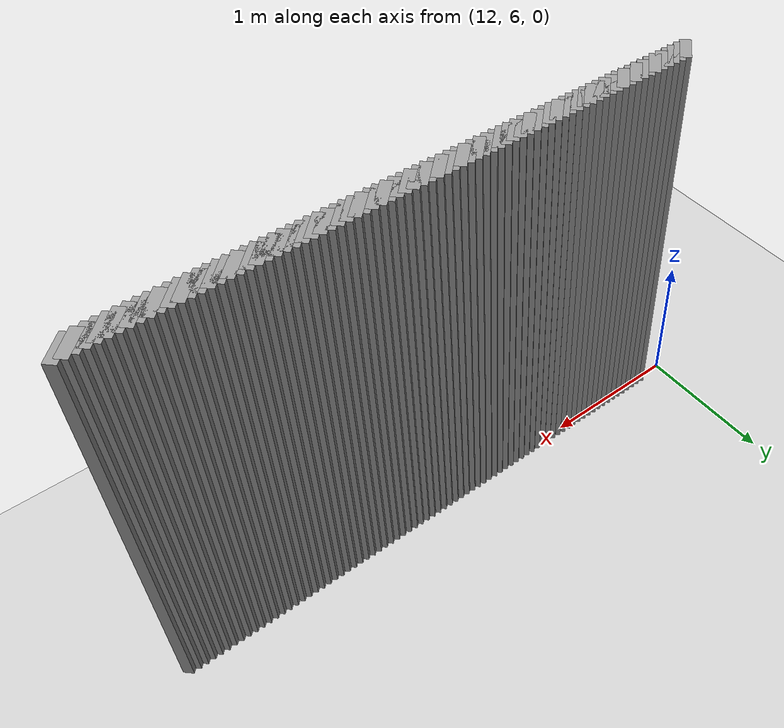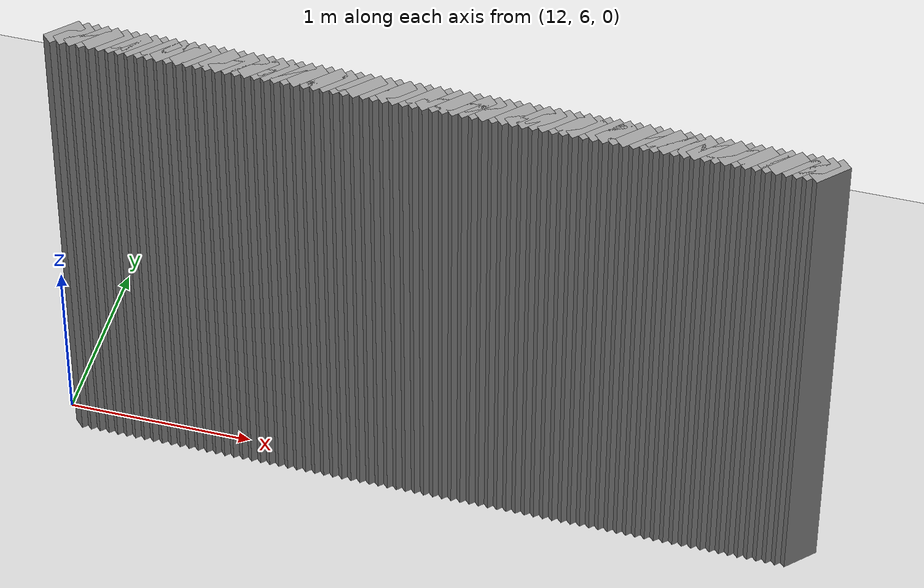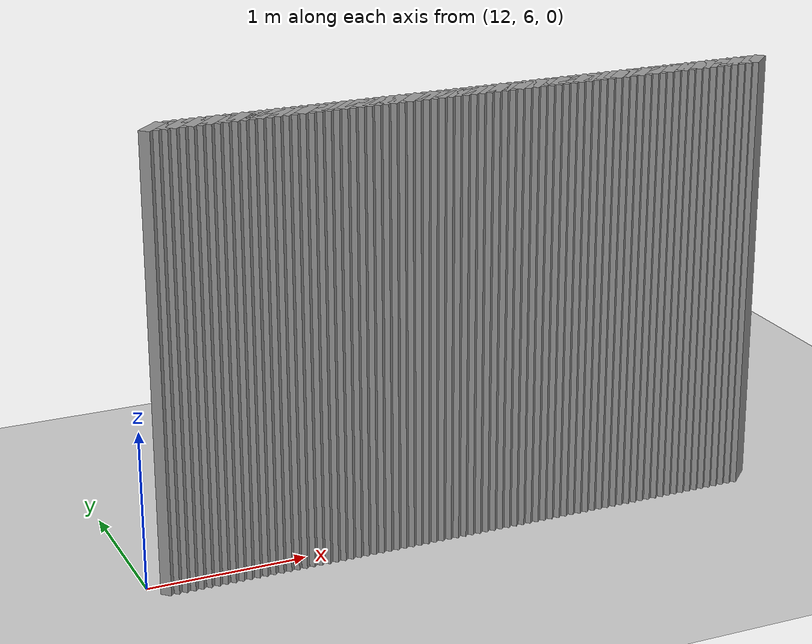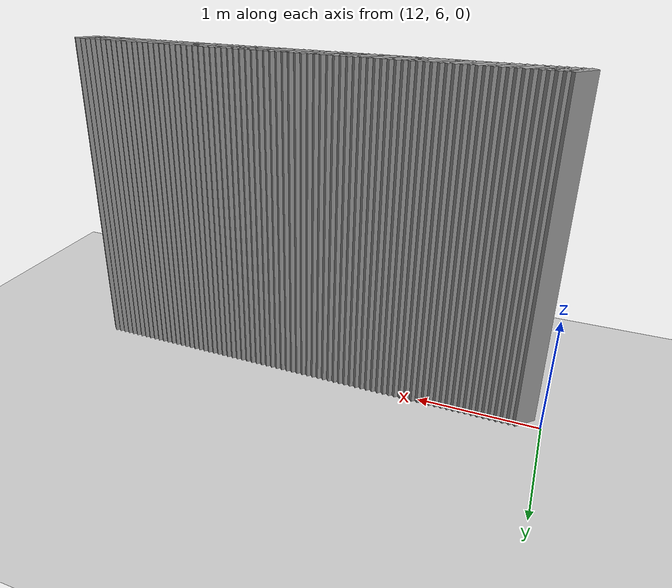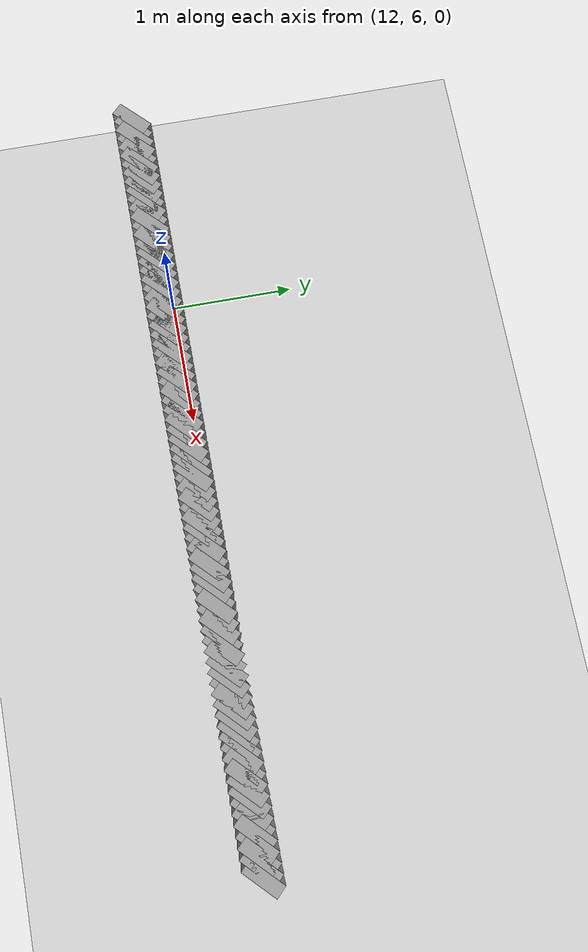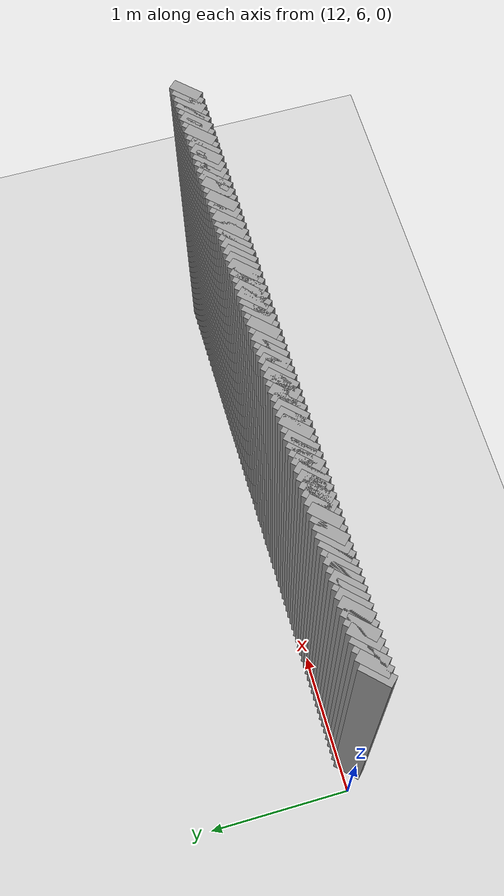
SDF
<sdf version="1.5">
 <world name="default">
  <include><uri>model://ground_plane</uri></include>
  <include><uri>model://sun</uri></include>
  <model name="grey_wall_4570">
   <static>1</static>
   <link name="link">
    <pose>12.15 5.95  1.4 0 0 -0.785398163397</pose>
    <collision name="collision"><geometry><box><size>0.0707106781187 .2  2.8</size></box></geometry></collision>
    <visual name="visual">
     <cast_shadows>0</cast_shadows>
     <geometry><box><size>0.0707106781187 .2  2.8</size></box></geometry>
     <material>
      <script>
       <uri>model://grey_wall/materials/scripts</uri>
       <uri>model://grey_wall/materials/textures</uri>
       <name>vrc/grey_wall</name>
      </script>
     </material>
    </visual>
   </link>
  </model>
  <model name="grey_wall_4571">
   <static>1</static>
   <link name="link">
    <pose>12.2 5.95  1.4 0 0 -0.785398163397</pose>
    <collision name="collision"><geometry><box><size>0.0707106781187 .2  2.8</size></box></geometry></collision>
    <visual name="visual">
     <cast_shadows>0</cast_shadows>
     <geometry><box><size>0.0707106781187 .2  2.8</size></box></geometry>
     <material>
      <script>
       <uri>model://grey_wall/materials/scripts</uri>
       <uri>model://grey_wall/materials/textures</uri>
       <name>vrc/grey_wall</name>
      </script>
     </material>
    </visual>
   </link>
  </model>
  <model name="grey_wall_4572">
   <static>1</static>
   <link name="link">
    <pose>12.25 5.95  1.4 0 0 -0.785398163397</pose>
    <collision name="collision"><geometry><box><size>0.0707106781187 .2  2.8</size></box></geometry></collision>
    <visual name="visual">
     <cast_shadows>0</cast_shadows>
     <geometry><box><size>0.0707106781187 .2  2.8</size></box></geometry>
     <material>
      <script>
       <uri>model://grey_wall/materials/scripts</uri>
       <uri>model://grey_wall/materials/textures</uri>
       <name>vrc/grey_wall</name>
      </script>
     </material>
    </visual>
   </link>
  </model>
  <model name="grey_wall_4573">
   <static>1</static>
   <link name="link">
    <pose>12.3 5.95  1.4 0 0 -0.785398163397</pose>
    <collision name="collision"><geometry><box><size>0.0707106781187 .2  2.8</size></box></geometry></collision>
    <visual name="visual">
     <cast_shadows>0</cast_shadows>
     <geometry><box><size>0.0707106781187 .2  2.8</size></box></geometry>
     <material>
      <script>
       <uri>model://grey_wall/materials/scripts</uri>
       <uri>model://grey_wall/materials/textures</uri>
       <name>vrc/grey_wall</name>
      </script>
     </material>
    </visual>
   </link>
  </model>
  <model name="grey_wall_4574">
   <static>1</static>
   <link name="link">
    <pose>12.35 5.95  1.4 0 0 -0.785398163397</pose>
    <collision name="collision"><geometry><box><size>0.0707106781187 .2  2.8</size></box></geometry></collision>
    <visual name="visual">
     <cast_shadows>0</cast_shadows>
     <geometry><box><size>0.0707106781187 .2  2.8</size></box></geometry>
     <material>
      <script>
       <uri>model://grey_wall/materials/scripts</uri>
       <uri>model://grey_wall/materials/textures</uri>
       <name>vrc/grey_wall</name>
      </script>
     </material>
    </visual>
   </link>
  </model>
  <model name="grey_wall_4575">
   <static>1</static>
   <link name="link">
    <pose>12.4 5.95  1.4 0 0 -0.785398163397</pose>
    <collision name="collision"><geometry><box><size>0.0707106781187 .2  2.8</size></box></geometry></collision>
    <visual name="visual">
     <cast_shadows>0</cast_shadows>
     <geometry><box><size>0.0707106781187 .2  2.8</size></box></geometry>
     <material>
      <script>
       <uri>model://grey_wall/materials/scripts</uri>
       <uri>model://grey_wall/materials/textures</uri>
       <name>vrc/grey_wall</name>
      </script>
     </material>
    </visual>
   </link>
  </model>
  <model name="grey_wall_4576">
   <static>1</static>
   <link name="link">
    <pose>12.45 5.95  1.4 0 0 -0.785398163397</pose>
    <collision name="collision"><geometry><box><size>0.0707106781187 .2  2.8</size></box></geometry></collision>
    <visual name="visual">
     <cast_shadows>0</cast_shadows>
     <geometry><box><size>0.0707106781187 .2  2.8</size></box></geometry>
     <material>
      <script>
       <uri>model://grey_wall/materials/scripts</uri>
       <uri>model://grey_wall/materials/textures</uri>
       <name>vrc/grey_wall</name>
      </script>
     </material>
    </visual>
   </link>
  </model>
  <model name="grey_wall_4577">
   <static>1</static>
   <link name="link">
    <pose>12.5 5.95  1.4 0 0 -0.785398163397</pose>
    <collision name="collision"><geometry><box><size>0.0707106781187 .2  2.8</size></box></geometry></collision>
    <visual name="visual">
     <cast_shadows>0</cast_shadows>
     <geometry><box><size>0.0707106781187 .2  2.8</size></box></geometry>
     <material>
      <script>
       <uri>model://grey_wall/materials/scripts</uri>
       <uri>model://grey_wall/materials/textures</uri>
       <name>vrc/grey_wall</name>
      </script>
     </material>
    </visual>
   </link>
  </model>
  <model name="grey_wall_4578">
   <static>1</static>
   <link name="link">
    <pose>12.55 5.95  1.4 0 0 -0.785398163397</pose>
    <collision name="collision"><geometry><box><size>0.0707106781187 .2  2.8</size></box></geometry></collision>
    <visual name="visual">
     <cast_shadows>0</cast_shadows>
     <geometry><box><size>0.0707106781187 .2  2.8</size></box></geometry>
     <material>
      <script>
       <uri>model://grey_wall/materials/scripts</uri>
       <uri>model://grey_wall/materials/textures</uri>
       <name>vrc/grey_wall</name>
      </script>
     </material>
    </visual>
   </link>
  </model>
  <model name="grey_wall_4579">
   <static>1</static>
   <link name="link">
    <pose>12.6 5.95  1.4 0 0 -0.785398163397</pose>
    <collision name="collision"><geometry><box><size>0.0707106781187 .2  2.8</size></box></geometry></collision>
    <visual name="visual">
     <cast_shadows>0</cast_shadows>
     <geometry><box><size>0.0707106781187 .2  2.8</size></box></geometry>
     <material>
      <script>
       <uri>model://grey_wall/materials/scripts</uri>
       <uri>model://grey_wall/materials/textures</uri>
       <name>vrc/grey_wall</name>
      </script>
     </material>
    </visual>
   </link>
  </model>
  <model name="grey_wall_4580">
   <static>1</static>
   <link name="link">
    <pose>12.65 5.95  1.4 0 0 -0.785398163397</pose>
    <collision name="collision"><geometry><box><size>0.0707106781187 .2  2.8</size></box></geometry></collision>
    <visual name="visual">
     <cast_shadows>0</cast_shadows>
     <geometry><box><size>0.0707106781187 .2  2.8</size></box></geometry>
     <material>
      <script>
       <uri>model://grey_wall/materials/scripts</uri>
       <uri>model://grey_wall/materials/textures</uri>
       <name>vrc/grey_wall</name>
      </script>
     </material>
    </visual>
   </link>
  </model>
  <model name="grey_wall_4581">
   <static>1</static>
   <link name="link">
    <pose>12.7 5.95  1.4 0 0 -0.785398163397</pose>
    <collision name="collision"><geometry><box><size>0.0707106781187 .2  2.8</size></box></geometry></collision>
    <visual name="visual">
     <cast_shadows>0</cast_shadows>
     <geometry><box><size>0.0707106781187 .2  2.8</size></box></geometry>
     <material>
      <script>
       <uri>model://grey_wall/materials/scripts</uri>
       <uri>model://grey_wall/materials/textures</uri>
       <name>vrc/grey_wall</name>
      </script>
     </material>
    </visual>
   </link>
  </model>
  <model name="grey_wall_4582">
   <static>1</static>
   <link name="link">
    <pose>12.75 5.95  1.4 0 0 -0.785398163397</pose>
    <collision name="collision"><geometry><box><size>0.0707106781187 .2  2.8</size></box></geometry></collision>
    <visual name="visual">
     <cast_shadows>0</cast_shadows>
     <geometry><box><size>0.0707106781187 .2  2.8</size></box></geometry>
     <material>
      <script>
       <uri>model://grey_wall/materials/scripts</uri>
       <uri>model://grey_wall/materials/textures</uri>
       <name>vrc/grey_wall</name>
      </script>
     </material>
    </visual>
   </link>
  </model>
  <model name="grey_wall_4583">
   <static>1</static>
   <link name="link">
    <pose>12.8 5.95  1.4 0 0 -0.785398163397</pose>
    <collision name="collision"><geometry><box><size>0.0707106781187 .2  2.8</size></box></geometry></collision>
    <visual name="visual">
     <cast_shadows>0</cast_shadows>
     <geometry><box><size>0.0707106781187 .2  2.8</size></box></geometry>
     <material>
      <script>
       <uri>model://grey_wall/materials/scripts</uri>
       <uri>model://grey_wall/materials/textures</uri>
       <name>vrc/grey_wall</name>
      </script>
     </material>
    </visual>
   </link>
  </model>
  <model name="grey_wall_4584">
   <static>1</static>
   <link name="link">
    <pose>12.85 5.95  1.4 0 0 -0.785398163397</pose>
    <collision name="collision"><geometry><box><size>0.0707106781187 .2  2.8</size></box></geometry></collision>
    <visual name="visual">
     <cast_shadows>0</cast_shadows>
     <geometry><box><size>0.0707106781187 .2  2.8</size></box></geometry>
     <material>
      <script>
       <uri>model://grey_wall/materials/scripts</uri>
       <uri>model://grey_wall/materials/textures</uri>
       <name>vrc/grey_wall</name>
      </script>
     </material>
    </visual>
   </link>
  </model>
  <model name="grey_wall_4585">
   <static>1</static>
   <link name="link">
    <pose>12.9 5.95  1.4 0 0 -0.785398163397</pose>
    <collision name="collision"><geometry><box><size>0.0707106781187 .2  2.8</size></box></geometry></collision>
    <visual name="visual">
     <cast_shadows>0</cast_shadows>
     <geometry><box><size>0.0707106781187 .2  2.8</size></box></geometry>
     <material>
      <script>
       <uri>model://grey_wall/materials/scripts</uri>
       <uri>model://grey_wall/materials/textures</uri>
       <name>vrc/grey_wall</name>
      </script>
     </material>
    </visual>
   </link>
  </model>
  <model name="grey_wall_4586">
   <static>1</static>
   <link name="link">
    <pose>12.95 5.95  1.4 0 0 -0.785398163397</pose>
    <collision name="collision"><geometry><box><size>0.0707106781187 .2  2.8</size></box></geometry></collision>
    <visual name="visual">
     <cast_shadows>0</cast_shadows>
     <geometry><box><size>0.0707106781187 .2  2.8</size></box></geometry>
     <material>
      <script>
       <uri>model://grey_wall/materials/scripts</uri>
       <uri>model://grey_wall/materials/textures</uri>
       <name>vrc/grey_wall</name>
      </script>
     </material>
    </visual>
   </link>
  </model>
  <model name="grey_wall_4587">
   <static>1</static>
   <link name="link">
    <pose>13.0 5.95  1.4 0 0 -0.785398163397</pose>
    <collision name="collision"><geometry><box><size>0.0707106781187 .2  2.8</size></box></geometry></collision>
    <visual name="visual">
     <cast_shadows>0</cast_shadows>
     <geometry><box><size>0.0707106781187 .2  2.8</size></box></geometry>
     <material>
      <script>
       <uri>model://grey_wall/materials/scripts</uri>
       <uri>model://grey_wall/materials/textures</uri>
       <name>vrc/grey_wall</name>
      </script>
     </material>
    </visual>
   </link>
  </model>
  <model name="grey_wall_4588">
   <static>1</static>
   <link name="link">
    <pose>13.05 5.95  1.4 0 0 -0.785398163397</pose>
    <collision name="collision"><geometry><box><size>0.0707106781187 .2  2.8</size></box></geometry></collision>
    <visual name="visual">
     <cast_shadows>0</cast_shadows>
     <geometry><box><size>0.0707106781187 .2  2.8</size></box></geometry>
     <material>
      <script>
       <uri>model://grey_wall/materials/scripts</uri>
       <uri>model://grey_wall/materials/textures</uri>
       <name>vrc/grey_wall</name>
      </script>
     </material>
    </visual>
   </link>
  </model>
  <model name="grey_wall_4589">
   <static>1</static>
   <link name="link">
    <pose>13.1 5.95  1.4 0 0 -0.785398163397</pose>
    <collision name="collision"><geometry><box><size>0.0707106781187 .2  2.8</size></box></geometry></collision>
    <visual name="visual">
     <cast_shadows>0</cast_shadows>
     <geometry><box><size>0.0707106781187 .2  2.8</size></box></geometry>
     <material>
      <script>
       <uri>model://grey_wall/materials/scripts</uri>
       <uri>model://grey_wall/materials/textures</uri>
       <name>vrc/grey_wall</name>
      </script>
     </material>
    </visual>
   </link>
  </model>
  <model name="grey_wall_4590">
   <static>1</static>
   <link name="link">
    <pose>13.15 5.95  1.4 0 0 -0.785398163397</pose>
    <collision name="collision"><geometry><box><size>0.0707106781187 .2  2.8</size></box></geometry></collision>
    <visual name="visual">
     <cast_shadows>0</cast_shadows>
     <geometry><box><size>0.0707106781187 .2  2.8</size></box></geometry>
     <material>
      <script>
       <uri>model://grey_wall/materials/scripts</uri>
       <uri>model://grey_wall/materials/textures</uri>
       <name>vrc/grey_wall</name>
      </script>
     </material>
    </visual>
   </link>
  </model>
  <model name="grey_wall_4591">
   <static>1</static>
   <link name="link">
    <pose>13.2 5.95  1.4 0 0 -0.785398163397</pose>
    <collision name="collision"><geometry><box><size>0.0707106781187 .2  2.8</size></box></geometry></collision>
    <visual name="visual">
     <cast_shadows>0</cast_shadows>
     <geometry><box><size>0.0707106781187 .2  2.8</size></box></geometry>
     <material>
      <script>
       <uri>model://grey_wall/materials/scripts</uri>
       <uri>model://grey_wall/materials/textures</uri>
       <name>vrc/grey_wall</name>
      </script>
     </material>
    </visual>
   </link>
  </model>
  <model name="grey_wall_4592">
   <static>1</static>
   <link name="link">
    <pose>13.25 5.95  1.4 0 0 -0.785398163397</pose>
    <collision name="collision"><geometry><box><size>0.0707106781187 .2  2.8</size></box></geometry></collision>
    <visual name="visual">
     <cast_shadows>0</cast_shadows>
     <geometry><box><size>0.0707106781187 .2  2.8</size></box></geometry>
     <material>
      <script>
       <uri>model://grey_wall/materials/scripts</uri>
       <uri>model://grey_wall/materials/textures</uri>
       <name>vrc/grey_wall</name>
      </script>
     </material>
    </visual>
   </link>
  </model>
  <model name="grey_wall_4593">
   <static>1</static>
   <link name="link">
    <pose>13.3 5.95  1.4 0 0 -0.785398163397</pose>
    <collision name="collision"><geometry><box><size>0.0707106781187 .2  2.8</size></box></geometry></collision>
    <visual name="visual">
     <cast_shadows>0</cast_shadows>
     <geometry><box><size>0.0707106781187 .2  2.8</size></box></geometry>
     <material>
      <script>
       <uri>model://grey_wall/materials/scripts</uri>
       <uri>model://grey_wall/materials/textures</uri>
       <name>vrc/grey_wall</name>
      </script>
     </material>
    </visual>
   </link>
  </model>
  <model name="grey_wall_4594">
   <static>1</static>
   <link name="link">
    <pose>13.35 5.95  1.4 0 0 -0.785398163397</pose>
    <collision name="collision"><geometry><box><size>0.0707106781187 .2  2.8</size></box></geometry></collision>
    <visual name="visual">
     <cast_shadows>0</cast_shadows>
     <geometry><box><size>0.0707106781187 .2  2.8</size></box></geometry>
     <material>
      <script>
       <uri>model://grey_wall/materials/scripts</uri>
       <uri>model://grey_wall/materials/textures</uri>
       <name>vrc/grey_wall</name>
      </script>
     </material>
    </visual>
   </link>
  </model>
  <model name="grey_wall_4595">
   <static>1</static>
   <link name="link">
    <pose>13.4 5.95  1.4 0 0 -0.785398163397</pose>
    <collision name="collision"><geometry><box><size>0.0707106781187 .2  2.8</size></box></geometry></collision>
    <visual name="visual">
     <cast_shadows>0</cast_shadows>
     <geometry><box><size>0.0707106781187 .2  2.8</size></box></geometry>
     <material>
      <script>
       <uri>model://grey_wall/materials/scripts</uri>
       <uri>model://grey_wall/materials/textures</uri>
       <name>vrc/grey_wall</name>
      </script>
     </material>
    </visual>
   </link>
  </model>
  <model name="grey_wall_4596">
   <static>1</static>
   <link name="link">
    <pose>13.45 5.95  1.4 0 0 -0.785398163397</pose>
    <collision name="collision"><geometry><box><size>0.0707106781187 .2  2.8</size></box></geometry></collision>
    <visual name="visual">
     <cast_shadows>0</cast_shadows>
     <geometry><box><size>0.0707106781187 .2  2.8</size></box></geometry>
     <material>
      <script>
       <uri>model://grey_wall/materials/scripts</uri>
       <uri>model://grey_wall/materials/textures</uri>
       <name>vrc/grey_wall</name>
      </script>
     </material>
    </visual>
   </link>
  </model>
  <model name="grey_wall_4597">
   <static>1</static>
   <link name="link">
    <pose>13.5 5.95  1.4 0 0 -0.785398163397</pose>
    <collision name="collision"><geometry><box><size>0.0707106781187 .2  2.8</size></box></geometry></collision>
    <visual name="visual">
     <cast_shadows>0</cast_shadows>
     <geometry><box><size>0.0707106781187 .2  2.8</size></box></geometry>
     <material>
      <script>
       <uri>model://grey_wall/materials/scripts</uri>
       <uri>model://grey_wall/materials/textures</uri>
       <name>vrc/grey_wall</name>
      </script>
     </material>
    </visual>
   </link>
  </model>
  <model name="grey_wall_4598">
   <static>1</static>
   <link name="link">
    <pose>13.55 5.95  1.4 0 0 -0.785398163397</pose>
    <collision name="collision"><geometry><box><size>0.0707106781187 .2  2.8</size></box></geometry></collision>
    <visual name="visual">
     <cast_shadows>0</cast_shadows>
     <geometry><box><size>0.0707106781187 .2  2.8</size></box></geometry>
     <material>
      <script>
       <uri>model://grey_wall/materials/scripts</uri>
       <uri>model://grey_wall/materials/textures</uri>
       <name>vrc/grey_wall</name>
      </script>
     </material>
    </visual>
   </link>
  </model>
  <model name="grey_wall_4599">
   <static>1</static>
   <link name="link">
    <pose>13.6 5.95  1.4 0 0 -0.785398163397</pose>
    <collision name="collision"><geometry><box><size>0.0707106781187 .2  2.8</size></box></geometry></collision>
    <visual name="visual">
     <cast_shadows>0</cast_shadows>
     <geometry><box><size>0.0707106781187 .2  2.8</size></box></geometry>
     <material>
      <script>
       <uri>model://grey_wall/materials/scripts</uri>
       <uri>model://grey_wall/materials/textures</uri>
       <name>vrc/grey_wall</name>
      </script>
     </material>
    </visual>
   </link>
  </model>
  <model name="grey_wall_4600">
   <static>1</static>
   <link name="link">
    <pose>13.65 5.95  1.4 0 0 -0.785398163397</pose>
    <collision name="collision"><geometry><box><size>0.0707106781187 .2  2.8</size></box></geometry></collision>
    <visual name="visual">
     <cast_shadows>0</cast_shadows>
     <geometry><box><size>0.0707106781187 .2  2.8</size></box></geometry>
     <material>
      <script>
       <uri>model://grey_wall/materials/scripts</uri>
       <uri>model://grey_wall/materials/textures</uri>
       <name>vrc/grey_wall</name>
      </script>
     </material>
    </visual>
   </link>
  </model>
  <model name="grey_wall_4601">
   <static>1</static>
   <link name="link">
    <pose>13.7 5.95  1.4 0 0 -0.785398163397</pose>
    <collision name="collision"><geometry><box><size>0.0707106781187 .2  2.8</size></box></geometry></collision>
    <visual name="visual">
     <cast_shadows>0</cast_shadows>
     <geometry><box><size>0.0707106781187 .2  2.8</size></box></geometry>
     <material>
      <script>
       <uri>model://grey_wall/materials/scripts</uri>
       <uri>model://grey_wall/materials/textures</uri>
       <name>vrc/grey_wall</name>
      </script>
     </material>
    </visual>
   </link>
  </model>
  <model name="grey_wall_4602">
   <static>1</static>
   <link name="link">
    <pose>13.75 5.95  1.4 0 0 -0.785398163397</pose>
    <collision name="collision"><geometry><box><size>0.0707106781187 .2  2.8</size></box></geometry></collision>
    <visual name="visual">
     <cast_shadows>0</cast_shadows>
     <geometry><box><size>0.0707106781187 .2  2.8</size></box></geometry>
     <material>
      <script>
       <uri>model://grey_wall/materials/scripts</uri>
       <uri>model://grey_wall/materials/textures</uri>
       <name>vrc/grey_wall</name>
      </script>
     </material>
    </visual>
   </link>
  </model>
  <model name="grey_wall_4603">
   <static>1</static>
   <link name="link">
    <pose>13.8 5.95  1.4 0 0 -0.785398163397</pose>
    <collision name="collision"><geometry><box><size>0.0707106781187 .2  2.8</size></box></geometry></collision>
    <visual name="visual">
     <cast_shadows>0</cast_shadows>
     <geometry><box><size>0.0707106781187 .2  2.8</size></box></geometry>
     <material>
      <script>
       <uri>model://grey_wall/materials/scripts</uri>
       <uri>model://grey_wall/materials/textures</uri>
       <name>vrc/grey_wall</name>
      </script>
     </material>
    </visual>
   </link>
  </model>
  <model name="grey_wall_4604">
   <static>1</static>
   <link name="link">
    <pose>13.85 5.95  1.4 0 0 -0.785398163397</pose>
    <collision name="collision"><geometry><box><size>0.0707106781187 .2  2.8</size></box></geometry></collision>
    <visual name="visual">
     <cast_shadows>0</cast_shadows>
     <geometry><box><size>0.0707106781187 .2  2.8</size></box></geometry>
     <material>
      <script>
       <uri>model://grey_wall/materials/scripts</uri>
       <uri>model://grey_wall/materials/textures</uri>
       <name>vrc/grey_wall</name>
      </script>
     </material>
    </visual>
   </link>
  </model>
  <model name="grey_wall_4605">
   <static>1</static>
   <link name="link">
    <pose>13.9 5.95  1.4 0 0 -0.785398163397</pose>
    <collision name="collision"><geometry><box><size>0.0707106781187 .2  2.8</size></box></geometry></collision>
    <visual name="visual">
     <cast_shadows>0</cast_shadows>
     <geometry><box><size>0.0707106781187 .2  2.8</size></box></geometry>
     <material>
      <script>
       <uri>model://grey_wall/materials/scripts</uri>
       <uri>model://grey_wall/materials/textures</uri>
       <name>vrc/grey_wall</name>
      </script>
     </material>
    </visual>
   </link>
  </model>
  <model name="grey_wall_4606">
   <static>1</static>
   <link name="link">
    <pose>13.95 5.95  1.4 0 0 -0.785398163397</pose>
    <collision name="collision"><geometry><box><size>0.0707106781187 .2  2.8</size></box></geometry></collision>
    <visual name="visual">
     <cast_shadows>0</cast_shadows>
     <geometry><box><size>0.0707106781187 .2  2.8</size></box></geometry>
     <material>
      <script>
       <uri>model://grey_wall/materials/scripts</uri>
       <uri>model://grey_wall/materials/textures</uri>
       <name>vrc/grey_wall</name>
      </script>
     </material>
    </visual>
   </link>
  </model>
  <model name="grey_wall_4607">
   <static>1</static>
   <link name="link">
    <pose>14.0 5.95  1.4 0 0 -0.785398163397</pose>
    <collision name="collision"><geometry><box><size>0.0707106781187 .2  2.8</size></box></geometry></collision>
    <visual name="visual">
     <cast_shadows>0</cast_shadows>
     <geometry><box><size>0.0707106781187 .2  2.8</size></box></geometry>
     <material>
      <script>
       <uri>model://grey_wall/materials/scripts</uri>
       <uri>model://grey_wall/materials/textures</uri>
       <name>vrc/grey_wall</name>
      </script>
     </material>
    </visual>
   </link>
  </model>
  <model name="grey_wall_4608">
   <static>1</static>
   <link name="link">
    <pose>14.05 5.95  1.4 0 0 -0.785398163397</pose>
    <collision name="collision"><geometry><box><size>0.0707106781187 .2  2.8</size></box></geometry></collision>
    <visual name="visual">
     <cast_shadows>0</cast_shadows>
     <geometry><box><size>0.0707106781187 .2  2.8</size></box></geometry>
     <material>
      <script>
       <uri>model://grey_wall/materials/scripts</uri>
       <uri>model://grey_wall/materials/textures</uri>
       <name>vrc/grey_wall</name>
      </script>
     </material>
    </visual>
   </link>
  </model>
  <model name="grey_wall_4609">
   <static>1</static>
   <link name="link">
    <pose>14.1 5.95  1.4 0 0 -0.785398163397</pose>
    <collision name="collision"><geometry><box><size>0.0707106781187 .2  2.8</size></box></geometry></collision>
    <visual name="visual">
     <cast_shadows>0</cast_shadows>
     <geometry><box><size>0.0707106781187 .2  2.8</size></box></geometry>
     <material>
      <script>
       <uri>model://grey_wall/materials/scripts</uri>
       <uri>model://grey_wall/materials/textures</uri>
       <name>vrc/grey_wall</name>
      </script>
     </material>
    </visual>
   </link>
  </model>
  <model name="grey_wall_4610">
   <static>1</static>
   <link name="link">
    <pose>14.15 5.95  1.4 0 0 -0.785398163397</pose>
    <collision name="collision"><geometry><box><size>0.0707106781187 .2  2.8</size></box></geometry></collision>
    <visual name="visual">
     <cast_shadows>0</cast_shadows>
     <geometry><box><size>0.0707106781187 .2  2.8</size></box></geometry>
     <material>
      <script>
       <uri>model://grey_wall/materials/scripts</uri>
       <uri>model://grey_wall/materials/textures</uri>
       <name>vrc/grey_wall</name>
      </script>
     </material>
    </visual>
   </link>
  </model>
  <model name="grey_wall_4611">
   <static>1</static>
   <link name="link">
    <pose>14.2 5.95  1.4 0 0 -0.785398163397</pose>
    <collision name="collision"><geometry><box><size>0.0707106781187 .2  2.8</size></box></geometry></collision>
    <visual name="visual">
     <cast_shadows>0</cast_shadows>
     <geometry><box><size>0.0707106781187 .2  2.8</size></box></geometry>
     <material>
      <script>
       <uri>model://grey_wall/materials/scripts</uri>
       <uri>model://grey_wall/materials/textures</uri>
       <name>vrc/grey_wall</name>
      </script>
     </material>
    </visual>
   </link>
  </model>
  <model name="grey_wall_4612">
   <static>1</static>
   <link name="link">
    <pose>14.25 5.95  1.4 0 0 -0.785398163397</pose>
    <collision name="collision"><geometry><box><size>0.0707106781187 .2  2.8</size></box></geometry></collision>
    <visual name="visual">
     <cast_shadows>0</cast_shadows>
     <geometry><box><size>0.0707106781187 .2  2.8</size></box></geometry>
     <material>
      <script>
       <uri>model://grey_wall/materials/scripts</uri>
       <uri>model://grey_wall/materials/textures</uri>
       <name>vrc/grey_wall</name>
      </script>
     </material>
    </visual>
   </link>
  </model>
  <model name="grey_wall_4613">
   <static>1</static>
   <link name="link">
    <pose>14.3 5.95  1.4 0 0 -0.785398163397</pose>
    <collision name="collision"><geometry><box><size>0.0707106781187 .2  2.8</size></box></geometry></collision>
    <visual name="visual">
     <cast_shadows>0</cast_shadows>
     <geometry><box><size>0.0707106781187 .2  2.8</size></box></geometry>
     <material>
      <script>
       <uri>model://grey_wall/materials/scripts</uri>
       <uri>model://grey_wall/materials/textures</uri>
       <name>vrc/grey_wall</name>
      </script>
     </material>
    </visual>
   </link>
  </model>
  <model name="grey_wall_4614">
   <static>1</static>
   <link name="link">
    <pose>14.35 5.95  1.4 0 0 -0.785398163397</pose>
    <collision name="collision"><geometry><box><size>0.0707106781187 .2  2.8</size></box></geometry></collision>
    <visual name="visual">
     <cast_shadows>0</cast_shadows>
     <geometry><box><size>0.0707106781187 .2  2.8</size></box></geometry>
     <material>
      <script>
       <uri>model://grey_wall/materials/scripts</uri>
       <uri>model://grey_wall/materials/textures</uri>
       <name>vrc/grey_wall</name>
      </script>
     </material>
    </visual>
   </link>
  </model>
  <model name="grey_wall_4615">
   <static>1</static>
   <link name="link">
    <pose>14.4 5.95  1.4 0 0 -0.785398163397</pose>
    <collision name="collision"><geometry><box><size>0.0707106781187 .2  2.8</size></box></geometry></collision>
    <visual name="visual">
     <cast_shadows>0</cast_shadows>
     <geometry><box><size>0.0707106781187 .2  2.8</size></box></geometry>
     <material>
      <script>
       <uri>model://grey_wall/materials/scripts</uri>
       <uri>model://grey_wall/materials/textures</uri>
       <name>vrc/grey_wall</name>
      </script>
     </material>
    </visual>
   </link>
  </model>
  <model name="grey_wall_4616">
   <static>1</static>
   <link name="link">
    <pose>14.45 5.95  1.4 0 0 -0.785398163397</pose>
    <collision name="collision"><geometry><box><size>0.0707106781187 .2  2.8</size></box></geometry></collision>
    <visual name="visual">
     <cast_shadows>0</cast_shadows>
     <geometry><box><size>0.0707106781187 .2  2.8</size></box></geometry>
     <material>
      <script>
       <uri>model://grey_wall/materials/scripts</uri>
       <uri>model://grey_wall/materials/textures</uri>
       <name>vrc/grey_wall</name>
      </script>
     </material>
    </visual>
   </link>
  </model>
  <model name="grey_wall_4617">
   <static>1</static>
   <link name="link">
    <pose>14.5 5.95  1.4 0 0 -0.785398163397</pose>
    <collision name="collision"><geometry><box><size>0.0707106781187 .2  2.8</size></box></geometry></collision>
    <visual name="visual">
     <cast_shadows>0</cast_shadows>
     <geometry><box><size>0.0707106781187 .2  2.8</size></box></geometry>
     <material>
      <script>
       <uri>model://grey_wall/materials/scripts</uri>
       <uri>model://grey_wall/materials/textures</uri>
       <name>vrc/grey_wall</name>
      </script>
     </material>
    </visual>
   </link>
  </model>
  <model name="grey_wall_4618">
   <static>1</static>
   <link name="link">
    <pose>14.55 5.95  1.4 0 0 -0.785398163397</pose>
    <collision name="collision"><geometry><box><size>0.0707106781187 .2  2.8</size></box></geometry></collision>
    <visual name="visual">
     <cast_shadows>0</cast_shadows>
     <geometry><box><size>0.0707106781187 .2  2.8</size></box></geometry>
     <material>
      <script>
       <uri>model://grey_wall/materials/scripts</uri>
       <uri>model://grey_wall/materials/textures</uri>
       <name>vrc/grey_wall</name>
      </script>
     </material>
    </visual>
   </link>
  </model>
  <model name="grey_wall_4619">
   <static>1</static>
   <link name="link">
    <pose>14.6 5.95  1.4 0 0 -0.785398163397</pose>
    <collision name="collision"><geometry><box><size>0.0707106781187 .2  2.8</size></box></geometry></collision>
    <visual name="visual">
     <cast_shadows>0</cast_shadows>
     <geometry><box><size>0.0707106781187 .2  2.8</size></box></geometry>
     <material>
      <script>
       <uri>model://grey_wall/materials/scripts</uri>
       <uri>model://grey_wall/materials/textures</uri>
       <name>vrc/grey_wall</name>
      </script>
     </material>
    </visual>
   </link>
  </model>
  <model name="grey_wall_4620">
   <static>1</static>
   <link name="link">
    <pose>14.65 5.95  1.4 0 0 -0.785398163397</pose>
    <collision name="collision"><geometry><box><size>0.0707106781187 .2  2.8</size></box></geometry></collision>
    <visual name="visual">
     <cast_shadows>0</cast_shadows>
     <geometry><box><size>0.0707106781187 .2  2.8</size></box></geometry>
     <material>
      <script>
       <uri>model://grey_wall/materials/scripts</uri>
       <uri>model://grey_wall/materials/textures</uri>
       <name>vrc/grey_wall</name>
      </script>
     </material>
    </visual>
   </link>
  </model>
  <model name="grey_wall_4621">
   <static>1</static>
   <link name="link">
    <pose>14.7 5.95  1.4 0 0 -0.785398163397</pose>
    <collision name="collision"><geometry><box><size>0.0707106781187 .2  2.8</size></box></geometry></collision>
    <visual name="visual">
     <cast_shadows>0</cast_shadows>
     <geometry><box><size>0.0707106781187 .2  2.8</size></box></geometry>
     <material>
      <script>
       <uri>model://grey_wall/materials/scripts</uri>
       <uri>model://grey_wall/materials/textures</uri>
       <name>vrc/grey_wall</name>
      </script>
     </material>
    </visual>
   </link>
  </model>
  <model name="grey_wall_4622">
   <static>1</static>
   <link name="link">
    <pose>14.75 5.95  1.4 0 0 -0.785398163397</pose>
    <collision name="collision"><geometry><box><size>0.0707106781187 .2  2.8</size></box></geometry></collision>
    <visual name="visual">
     <cast_shadows>0</cast_shadows>
     <geometry><box><size>0.0707106781187 .2  2.8</size></box></geometry>
     <material>
      <script>
       <uri>model://grey_wall/materials/scripts</uri>
       <uri>model://grey_wall/materials/textures</uri>
       <name>vrc/grey_wall</name>
      </script>
     </material>
    </visual>
   </link>
  </model>
  <model name="grey_wall_4623">
   <static>1</static>
   <link name="link">
    <pose>14.8 5.95  1.4 0 0 -0.785398163397</pose>
    <collision name="collision"><geometry><box><size>0.0707106781187 .2  2.8</size></box></geometry></collision>
    <visual name="visual">
     <cast_shadows>0</cast_shadows>
     <geometry><box><size>0.0707106781187 .2  2.8</size></box></geometry>
     <material>
      <script>
       <uri>model://grey_wall/materials/scripts</uri>
       <uri>model://grey_wall/materials/textures</uri>
       <name>vrc/grey_wall</name>
      </script>
     </material>
    </visual>
   </link>
  </model>
  <model name="grey_wall_4624">
   <static>1</static>
   <link name="link">
    <pose>14.85 5.95  1.4 0 0 -0.785398163397</pose>
    <collision name="collision"><geometry><box><size>0.0707106781187 .2  2.8</size></box></geometry></collision>
    <visual name="visual">
     <cast_shadows>0</cast_shadows>
     <geometry><box><size>0.0707106781187 .2  2.8</size></box></geometry>
     <material>
      <script>
       <uri>model://grey_wall/materials/scripts</uri>
       <uri>model://grey_wall/materials/textures</uri>
       <name>vrc/grey_wall</name>
      </script>
     </material>
    </visual>
   </link>
  </model>
  <model name="grey_wall_4625">
   <static>1</static>
   <link name="link">
    <pose>14.9 5.95  1.4 0 0 -0.785398163397</pose>
    <collision name="collision"><geometry><box><size>0.0707106781187 .2  2.8</size></box></geometry></collision>
    <visual name="visual">
     <cast_shadows>0</cast_shadows>
     <geometry><box><size>0.0707106781187 .2  2.8</size></box></geometry>
     <material>
      <script>
       <uri>model://grey_wall/materials/scripts</uri>
       <uri>model://grey_wall/materials/textures</uri>
       <name>vrc/grey_wall</name>
      </script>
     </material>
    </visual>
   </link>
  </model>
  <model name="grey_wall_4626">
   <static>1</static>
   <link name="link">
    <pose>14.95 5.95  1.4 0 0 -0.785398163397</pose>
    <collision name="collision"><geometry><box><size>0.0707106781187 .2  2.8</size></box></geometry></collision>
    <visual name="visual">
     <cast_shadows>0</cast_shadows>
     <geometry><box><size>0.0707106781187 .2  2.8</size></box></geometry>
     <material>
      <script>
       <uri>model://grey_wall/materials/scripts</uri>
       <uri>model://grey_wall/materials/textures</uri>
       <name>vrc/grey_wall</name>
      </script>
     </material>
    </visual>
   </link>
  </model>
  <model name="grey_wall_4627">
   <static>1</static>
   <link name="link">
    <pose>15.0 5.95  1.4 0 0 -0.785398163397</pose>
    <collision name="collision"><geometry><box><size>0.0707106781187 .2  2.8</size></box></geometry></collision>
    <visual name="visual">
     <cast_shadows>0</cast_shadows>
     <geometry><box><size>0.0707106781187 .2  2.8</size></box></geometry>
     <material>
      <script>
       <uri>model://grey_wall/materials/scripts</uri>
       <uri>model://grey_wall/materials/textures</uri>
       <name>vrc/grey_wall</name>
      </script>
     </material>
    </visual>
   </link>
  </model>
  <model name="grey_wall_4628">
   <static>1</static>
   <link name="link">
    <pose>15.05 5.95  1.4 0 0 -0.785398163397</pose>
    <collision name="collision"><geometry><box><size>0.0707106781187 .2  2.8</size></box></geometry></collision>
    <visual name="visual">
     <cast_shadows>0</cast_shadows>
     <geometry><box><size>0.0707106781187 .2  2.8</size></box></geometry>
     <material>
      <script>
       <uri>model://grey_wall/materials/scripts</uri>
       <uri>model://grey_wall/materials/textures</uri>
       <name>vrc/grey_wall</name>
      </script>
     </material>
    </visual>
   </link>
  </model>
  <model name="grey_wall_4629">
   <static>1</static>
   <link name="link">
    <pose>15.1 5.95  1.4 0 0 -0.785398163397</pose>
    <collision name="collision"><geometry><box><size>0.0707106781187 .2  2.8</size></box></geometry></collision>
    <visual name="visual">
     <cast_shadows>0</cast_shadows>
     <geometry><box><size>0.0707106781187 .2  2.8</size></box></geometry>
     <material>
      <script>
       <uri>model://grey_wall/materials/scripts</uri>
       <uri>model://grey_wall/materials/textures</uri>
       <name>vrc/grey_wall</name>
      </script>
     </material>
    </visual>
   </link>
  </model>
  <model name="grey_wall_4630">
   <static>1</static>
   <link name="link">
    <pose>15.15 5.95  1.4 0 0 -0.785398163397</pose>
    <collision name="collision"><geometry><box><size>0.0707106781187 .2  2.8</size></box></geometry></collision>
    <visual name="visual">
     <cast_shadows>0</cast_shadows>
     <geometry><box><size>0.0707106781187 .2  2.8</size></box></geometry>
     <material>
      <script>
       <uri>model://grey_wall/materials/scripts</uri>
       <uri>model://grey_wall/materials/textures</uri>
       <name>vrc/grey_wall</name>
      </script>
     </material>
    </visual>
   </link>
  </model>
  <model name="grey_wall_4631">
   <static>1</static>
   <link name="link">
    <pose>15.2 5.95  1.4 0 0 -0.785398163397</pose>
    <collision name="collision"><geometry><box><size>0.0707106781187 .2  2.8</size></box></geometry></collision>
    <visual name="visual">
     <cast_shadows>0</cast_shadows>
     <geometry><box><size>0.0707106781187 .2  2.8</size></box></geometry>
     <material>
      <script>
       <uri>model://grey_wall/materials/scripts</uri>
       <uri>model://grey_wall/materials/textures</uri>
       <name>vrc/grey_wall</name>
      </script>
     </material>
    </visual>
   </link>
  </model>
  <model name="grey_wall_4632">
   <static>1</static>
   <link name="link">
    <pose>15.25 5.95  1.4 0 0 -0.785398163397</pose>
    <collision name="collision"><geometry><box><size>0.0707106781187 .2  2.8</size></box></geometry></collision>
    <visual name="visual">
     <cast_shadows>0</cast_shadows>
     <geometry><box><size>0.0707106781187 .2  2.8</size></box></geometry>
     <material>
      <script>
       <uri>model://grey_wall/materials/scripts</uri>
       <uri>model://grey_wall/materials/textures</uri>
       <name>vrc/grey_wall</name>
      </script>
     </material>
    </visual>
   </link>
  </model>
  <model name="grey_wall_4633">
   <static>1</static>
   <link name="link">
    <pose>15.3 5.95  1.4 0 0 -0.785398163397</pose>
    <collision name="collision"><geometry><box><size>0.0707106781187 .2  2.8</size></box></geometry></collision>
    <visual name="visual">
     <cast_shadows>0</cast_shadows>
     <geometry><box><size>0.0707106781187 .2  2.8</size></box></geometry>
     <material>
      <script>
       <uri>model://grey_wall/materials/scripts</uri>
       <uri>model://grey_wall/materials/textures</uri>
       <name>vrc/grey_wall</name>
      </script>
     </material>
    </visual>
   </link>
  </model>
  <model name="grey_wall_4634">
   <static>1</static>
   <link name="link">
    <pose>15.35 5.95  1.4 0 0 -0.785398163397</pose>
    <collision name="collision"><geometry><box><size>0.0707106781187 .2  2.8</size></box></geometry></collision>
    <visual name="visual">
     <cast_shadows>0</cast_shadows>
     <geometry><box><size>0.0707106781187 .2  2.8</size></box></geometry>
     <material>
      <script>
       <uri>model://grey_wall/materials/scripts</uri>
       <uri>model://grey_wall/materials/textures</uri>
       <name>vrc/grey_wall</name>
      </script>
     </material>
    </visual>
   </link>
  </model>
  <model name="grey_wall_4635">
   <static>1</static>
   <link name="link">
    <pose>15.4 5.95  1.4 0 0 -0.785398163397</pose>
    <collision name="collision"><geometry><box><size>0.0707106781187 .2  2.8</size></box></geometry></collision>
    <visual name="visual">
     <cast_shadows>0</cast_shadows>
     <geometry><box><size>0.0707106781187 .2  2.8</size></box></geometry>
     <material>
      <script>
       <uri>model://grey_wall/materials/scripts</uri>
       <uri>model://grey_wall/materials/textures</uri>
       <name>vrc/grey_wall</name>
      </script>
     </material>
    </visual>
   </link>
  </model>
  <model name="grey_wall_4636">
   <static>1</static>
   <link name="link">
    <pose>15.45 5.95  1.4 0 0 -0.785398163397</pose>
    <collision name="collision"><geometry><box><size>0.0707106781187 .2  2.8</size></box></geometry></collision>
    <visual name="visual">
     <cast_shadows>0</cast_shadows>
     <geometry><box><size>0.0707106781187 .2  2.8</size></box></geometry>
     <material>
      <script>
       <uri>model://grey_wall/materials/scripts</uri>
       <uri>model://grey_wall/materials/textures</uri>
       <name>vrc/grey_wall</name>
      </script>
     </material>
    </visual>
   </link>
  </model>
  <model name="grey_wall_4637">
   <static>1</static>
   <link name="link">
    <pose>15.5 5.95  1.4 0 0 -0.785398163397</pose>
    <collision name="collision"><geometry><box><size>0.0707106781187 .2  2.8</size></box></geometry></collision>
    <visual name="visual">
     <cast_shadows>0</cast_shadows>
     <geometry><box><size>0.0707106781187 .2  2.8</size></box></geometry>
     <material>
      <script>
       <uri>model://grey_wall/materials/scripts</uri>
       <uri>model://grey_wall/materials/textures</uri>
       <name>vrc/grey_wall</name>
      </script>
     </material>
    </visual>
   </link>
  </model>
  <model name="grey_wall_4638">
   <static>1</static>
   <link name="link">
    <pose>15.55 5.95  1.4 0 0 -0.785398163397</pose>
    <collision name="collision"><geometry><box><size>0.0707106781187 .2  2.8</size></box></geometry></collision>
    <visual name="visual">
     <cast_shadows>0</cast_shadows>
     <geometry><box><size>0.0707106781187 .2  2.8</size></box></geometry>
     <material>
      <script>
       <uri>model://grey_wall/materials/scripts</uri>
       <uri>model://grey_wall/materials/textures</uri>
       <name>vrc/grey_wall</name>
      </script>
     </material>
    </visual>
   </link>
  </model>
  <model name="grey_wall_4639">
   <static>1</static>
   <link name="link">
    <pose>15.6 5.95  1.4 0 0 -0.785398163397</pose>
    <collision name="collision"><geometry><box><size>0.0707106781187 .2  2.8</size></box></geometry></collision>
    <visual name="visual">
     <cast_shadows>0</cast_shadows>
     <geometry><box><size>0.0707106781187 .2  2.8</size></box></geometry>
     <material>
      <script>
       <uri>model://grey_wall/materials/scripts</uri>
       <uri>model://grey_wall/materials/textures</uri>
       <name>vrc/grey_wall</name>
      </script>
     </material>
    </visual>
   </link>
  </model>
  <model name="grey_wall_4640">
   <static>1</static>
   <link name="link">
    <pose>15.65 5.95  1.4 0 0 -0.785398163397</pose>
    <collision name="collision"><geometry><box><size>0.0707106781187 .2  2.8</size></box></geometry></collision>
    <visual name="visual">
     <cast_shadows>0</cast_shadows>
     <geometry><box><size>0.0707106781187 .2  2.8</size></box></geometry>
     <material>
      <script>
       <uri>model://grey_wall/materials/scripts</uri>
       <uri>model://grey_wall/materials/textures</uri>
       <name>vrc/grey_wall</name>
      </script>
     </material>
    </visual>
   </link>
  </model>
  <model name="grey_wall_4641">
   <static>1</static>
   <link name="link">
    <pose>15.7 5.95  1.4 0 0 -0.785398163397</pose>
    <collision name="collision"><geometry><box><size>0.0707106781187 .2  2.8</size></box></geometry></collision>
    <visual name="visual">
     <cast_shadows>0</cast_shadows>
     <geometry><box><size>0.0707106781187 .2  2.8</size></box></geometry>
     <material>
      <script>
       <uri>model://grey_wall/materials/scripts</uri>
       <uri>model://grey_wall/materials/textures</uri>
       <name>vrc/grey_wall</name>
      </script>
     </material>
    </visual>
   </link>
  </model>
  <model name="grey_wall_4642">
   <static>1</static>
   <link name="link">
    <pose>15.75 5.95  1.4 0 0 -0.785398163397</pose>
    <collision name="collision"><geometry><box><size>0.0707106781187 .2  2.8</size></box></geometry></collision>
    <visual name="visual">
     <cast_shadows>0</cast_shadows>
     <geometry><box><size>0.0707106781187 .2  2.8</size></box></geometry>
     <material>
      <script>
       <uri>model://grey_wall/materials/scripts</uri>
       <uri>model://grey_wall/materials/textures</uri>
       <name>vrc/grey_wall</name>
      </script>
     </material>
    </visual>
   </link>
  </model>
  <model name="grey_wall_4643">
   <static>1</static>
   <link name="link">
    <pose>15.8 5.95  1.4 0 0 -0.785398163397</pose>
    <collision name="collision"><geometry><box><size>0.0707106781187 .2  2.8</size></box></geometry></collision>
    <visual name="visual">
     <cast_shadows>0</cast_shadows>
     <geometry><box><size>0.0707106781187 .2  2.8</size></box></geometry>
     <material>
      <script>
       <uri>model://grey_wall/materials/scripts</uri>
       <uri>model://grey_wall/materials/textures</uri>
       <name>vrc/grey_wall</name>
      </script>
     </material>
    </visual>
   </link>
  </model>
  <model name="grey_wall_4644">
   <static>1</static>
   <link name="link">
    <pose>15.85 5.95  1.4 0 0 -0.785398163397</pose>
    <collision name="collision"><geometry><box><size>0.0707106781187 .2  2.8</size></box></geometry></collision>
    <visual name="visual">
     <cast_shadows>0</cast_shadows>
     <geometry><box><size>0.0707106781187 .2  2.8</size></box></geometry>
     <material>
      <script>
       <uri>model://grey_wall/materials/scripts</uri>
       <uri>model://grey_wall/materials/textures</uri>
       <name>vrc/grey_wall</name>
      </script>
     </material>
    </visual>
   </link>
  </model>
  <model name="grey_wall_4645">
   <static>1</static>
   <link name="link">
    <pose>15.9 5.95  1.4 0 0 -0.785398163397</pose>
    <collision name="collision"><geometry><box><size>0.0707106781187 .2  2.8</size></box></geometry></collision>
    <visual name="visual">
     <cast_shadows>0</cast_shadows>
     <geometry><box><size>0.0707106781187 .2  2.8</size></box></geometry>
     <material>
      <script>
       <uri>model://grey_wall/materials/scripts</uri>
       <uri>model://grey_wall/materials/textures</uri>
       <name>vrc/grey_wall</name>
      </script>
     </material>
    </visual>
   </link>
  </model>
  <model name="grey_wall_4646">
   <static>1</static>
   <link name="link">
    <pose>15.95 5.95  1.4 0 0 -0.785398163397</pose>
    <collision name="collision"><geometry><box><size>0.0707106781187 .2  2.8</size></box></geometry></collision>
    <visual name="visual">
     <cast_shadows>0</cast_shadows>
     <geometry><box><size>0.0707106781187 .2  2.8</size></box></geometry>
     <material>
      <script>
       <uri>model://grey_wall/materials/scripts</uri>
       <uri>model://grey_wall/materials/textures</uri>
       <name>vrc/grey_wall</name>
      </script>
     </material>
    </visual>
   </link>
  </model>
  <model name="grey_wall_4647">
   <static>1</static>
   <link name="link">
    <pose>16.0 5.95  1.4 0 0 -0.785398163397</pose>
    <collision name="collision"><geometry><box><size>0.0707106781187 .2  2.8</size></box></geometry></collision>
    <visual name="visual">
     <cast_shadows>0</cast_shadows>
     <geometry><box><size>0.0707106781187 .2  2.8</size></box></geometry>
     <material>
      <script>
       <uri>model://grey_wall/materials/scripts</uri>
       <uri>model://grey_wall/materials/textures</uri>
       <name>vrc/grey_wall</name>
      </script>
     </material>
    </visual>
   </link>
  </model>
 </world>
</sdf>
